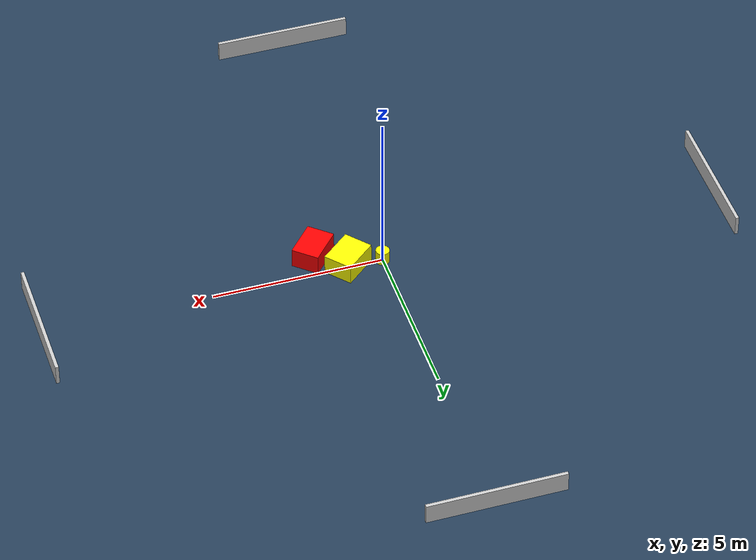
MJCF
<?xml version="1.0" ?>
<mujoco model="generated_environment">
  <option timestep="0.01" integrator="RK4" cone="elliptic"/>
  <default>
    <geom density="1"/>
  </default>
  <asset>
    <texture builtin="gradient" height="3072" name="skybox" rgb1="0.3 0.5 0.7" rgb2="0 0 0" type="skybox" width="512"/>
    <texture builtin="checker" height="300" name="groundplane" rgb1="0.2 0.3 0.4" rgb2="0.1 0.2 0.3" type="2d" width="300"/>
    <material name="groundplane" reflectance="0.2" texrepeat="5 5" texture="groundplane"/>
  </asset>
  <worldbody>
    <light dir="0 0 -1" directional="true" pos="0 0 1.5"/>
    <geom condim="3" friction="0.5 0.005 0.001" material="groundplane" name="floor" pos="0 0 0" size="0 0 0.05" type="plane"/>
    <body name="walls">
      <geom name="wall_1" condim="4" pos="-10.0 0.0 0.3" rgba="0.800000011920929 0.800000011920929 0.800000011920929 1.0" size="0.05 2.0 0.3" type="box"/>
      <geom name="wall_2" condim="4" pos="10.0 0.0 0.3" rgba="0.800000011920929 0.800000011920929 0.800000011920929 1.0" size="0.05 2.0 0.3" type="box"/>
      <geom name="wall_3" condim="4" pos="0.0 -10.0 0.3" rgba="0.800000011920929 0.800000011920929 0.800000011920929 1.0" size="2.0 0.05 0.3" type="box"/>
      <geom name="wall_4" condim="4" pos="0.0 10.0 0.3" rgba="0.800000011920929 0.800000011920929 0.800000011920929 1.0" size="2.0 0.05 0.3" type="box"/>
    </body>
    <body name="robot">
      <joint name="joint_x" type="slide" pos="0 0 0" axis="1 0 0"/>
      <joint name="joint_y" type="slide" pos="0 0 0" axis="0 1 0"/>
      <geom name="robot" type="cylinder" pos="0.0 0.0 0.2" size="0.2 0.2 0.0" mass="5.0" friction="1.0 0.005 0.0001" condim="4" rgba="1.0 1.0 0.0 1.0"/>
    </body>
    <body name="obstacle_1_movable">
      <geom name="obstacle_1_movable" condim="4" pos="1.0088446629536918 -0.06387546341275491 0.3" euler="0 0 130.58510549579776" friction="0.0 0.005 0.001" rgba="1.0 1.0 0.0 1.0" size="0.4339323423278113 0.5536275585792294 0.3" type="box" mass="0.1"/>
      <joint type="free"/>
    </body>
    <body name="obstacle_2_static">
      <geom name="obstacle_2_static" condim="4" pos="1.8502378261653114 -0.7158025392459051 0.3" euler="0 0 318.7789752863614" friction="0.0 0.005 0.001" rgba="1.0 0.0 0.0 1.0" size="0.40584063310126006 0.5493427721779489 0.3" type="box"/>
    </body>
  </worldbody>
  <actuator>
    <motor name="actuator_x" joint="joint_x" gear="1" ctrlrange="-1 1"/>
    <motor name="actuator_y" joint="joint_y" gear="1" ctrlrange="-1 1"/>
  </actuator>
</mujoco>
